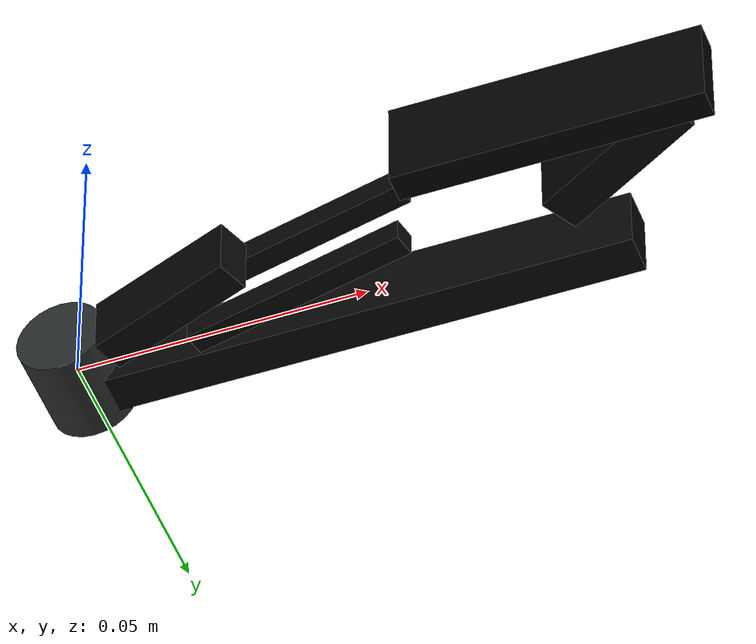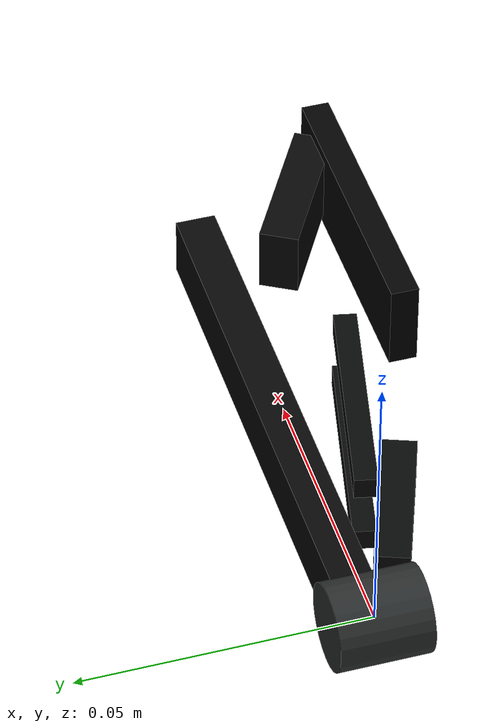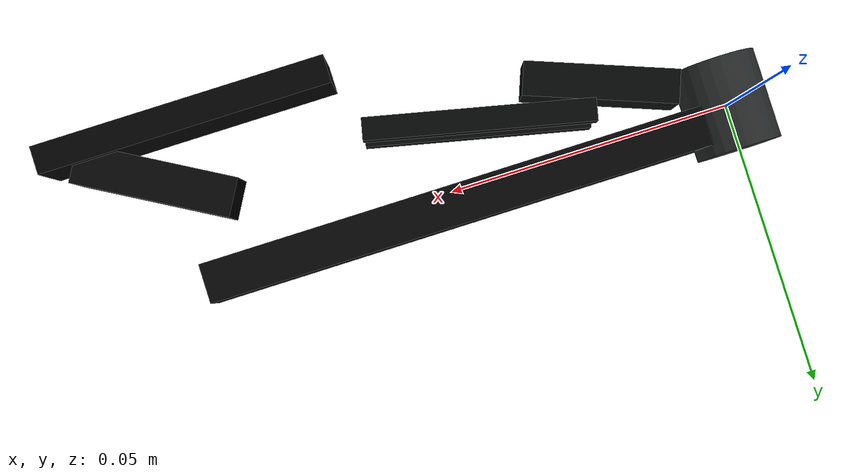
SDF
<?xml version="1.0"?>
<sdf version="1.9">
  <model name="gamantaray_gripper_ricketts_left_jaw_visual">
    <static>true</static>
    <link name="jaw_link">
      <collision name="pivot_hub_collision">
        <pose>0 0 0 1.5707963268 0 0</pose>
        <geometry><cylinder><radius>0.0075</radius><length>0.016</length></cylinder></geometry>
        <surface>
          <friction><ode><mu>1.3</mu><mu2>1.3</mu2><slip1>0.01</slip1><slip2>0.01</slip2></ode></friction>
          <bounce><restitution_coefficient>0.0</restitution_coefficient><threshold>1000</threshold></bounce>
          <contact><ode><kp>70000</kp><kd>160</kd><max_vel>0.04</max_vel><min_depth>0.001</min_depth></ode></contact>
        </surface>
      </collision>
      <collision name="outer_finger_collision">
        <pose>0.048 0.0025 0 0 0 0</pose>
        <geometry><box><size>0.094 0.007 0.011</size></box></geometry>
        <surface>
          <friction><ode><mu>1.2</mu><mu2>1.2</mu2><slip1>0.012</slip1><slip2>0.012</slip2></ode></friction>
          <bounce><restitution_coefficient>0.0</restitution_coefficient><threshold>1000</threshold></bounce>
          <contact><ode><kp>65000</kp><kd>150</kd><max_vel>0.04</max_vel><min_depth>0.001</min_depth></ode></contact>
        </surface>
      </collision>
      <collision name="inner_pad_collision">
        <pose>0.090 -0.026 0 0 0 0</pose>
        <geometry><box><size>0.058 0.006 0.014</size></box></geometry>
        <surface>
          <friction><ode><mu>1.9</mu><mu2>1.9</mu2><slip1>0.004</slip1><slip2>0.004</slip2></ode></friction>
          <bounce><restitution_coefficient>0.0</restitution_coefficient><threshold>1000</threshold></bounce>
          <contact><ode><kp>85000</kp><kd>220</kd><max_vel>0.025</max_vel><min_depth>0.001</min_depth></ode></contact>
        </surface>
      </collision>
      <collision name="front_hook_tip_collision">
        <pose>0.098 -0.017 0 0 0 -0.52</pose>
        <geometry><box><size>0.028 0.007 0.012</size></box></geometry>
        <surface>
          <friction><ode><mu>1.5</mu><mu2>1.5</mu2><slip1>0.008</slip1><slip2>0.008</slip2></ode></friction>
          <bounce><restitution_coefficient>0.0</restitution_coefficient><threshold>1000</threshold></bounce>
          <contact><ode><kp>70000</kp><kd>170</kd><max_vel>0.035</max_vel><min_depth>0.001</min_depth></ode></contact>
        </surface>
      </collision>
      <collision name="rear_link_collision">
        <pose>0.020 -0.010 0 0 0 -0.36</pose>
        <geometry><box><size>0.027 0.006 0.010</size></box></geometry>
        <surface>
          <friction><ode><mu>1.2</mu><mu2>1.2</mu2><slip1>0.012</slip1><slip2>0.012</slip2></ode></friction>
          <bounce><restitution_coefficient>0.0</restitution_coefficient><threshold>1000</threshold></bounce>
          <contact><ode><kp>65000</kp><kd>150</kd><max_vel>0.04</max_vel><min_depth>0.001</min_depth></ode></contact>
        </surface>
      </collision>

      <visual name="pivot_hub">
        <pose>0 0 0 1.5707963268 0 0</pose>
        <geometry><cylinder><radius>0.0075</radius><length>0.016</length></cylinder></geometry>
        <material><ambient>0.09 0.10 0.10 1</ambient><diffuse>0.16 0.17 0.17 1</diffuse><specular>0.40 0.40 0.36 1</specular></material>
      </visual>
      <visual name="outer_finger">
        <pose>0.048 0.0025 0 0 0 0</pose>
        <geometry><box><size>0.094 0.007 0.011</size></box></geometry>
        <material><ambient>0.010 0.011 0.012 1</ambient><diffuse>0.022 0.024 0.026 1</diffuse><specular>0.22 0.22 0.20 1</specular></material>
      </visual>
      <visual name="inner_rubber_pad">
        <pose>0.090 -0.026 0 0 0 0</pose>
        <geometry><box><size>0.052 0.005 0.016</size></box></geometry>
        <material><ambient>0.002 0.002 0.002 1</ambient><diffuse>0.006 0.006 0.006 1</diffuse></material>
      </visual>
      <visual name="front_hook_tip">
        <pose>0.098 -0.017 0 0 0 -0.52</pose>
        <geometry><box><size>0.028 0.007 0.012</size></box></geometry>
        <material><ambient>0.010 0.011 0.012 1</ambient><diffuse>0.022 0.024 0.026 1</diffuse><specular>0.22 0.22 0.20 1</specular></material>
      </visual>
      <visual name="rear_link">
        <pose>0.020 -0.010 0 0 0 -0.36</pose>
        <geometry><box><size>0.027 0.006 0.010</size></box></geometry>
        <material><ambient>0.012 0.013 0.014 1</ambient><diffuse>0.024 0.026 0.028 1</diffuse></material>
      </visual>
      <visual name="upper_web">
        <pose>0.042 -0.010 0.006 0 0 -0.22</pose>
        <geometry><box><size>0.040 0.004 0.004</size></box></geometry>
        <material><ambient>0.012 0.013 0.014 1</ambient><diffuse>0.024 0.026 0.028 1</diffuse></material>
      </visual>
      <visual name="lower_web">
        <pose>0.042 -0.010 -0.006 0 0 -0.22</pose>
        <geometry><box><size>0.040 0.004 0.004</size></box></geometry>
        <material><ambient>0.012 0.013 0.014 1</ambient><diffuse>0.024 0.026 0.028 1</diffuse></material>
      </visual>
    </link>
  </model>
</sdf>
